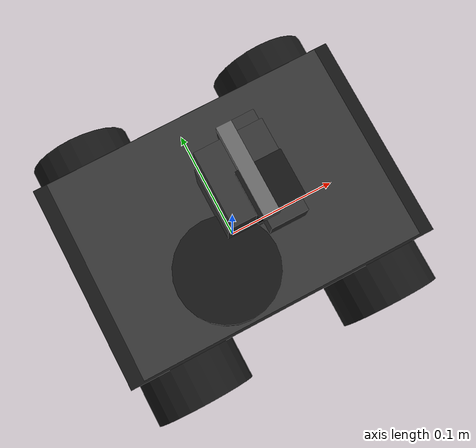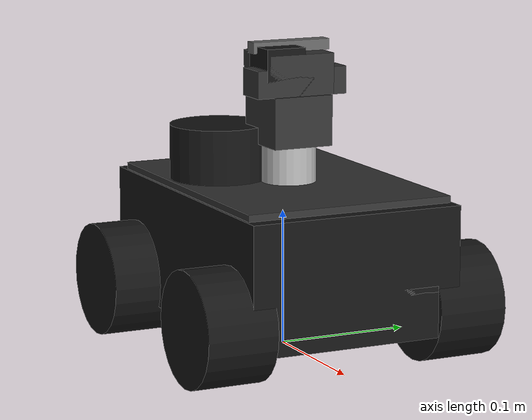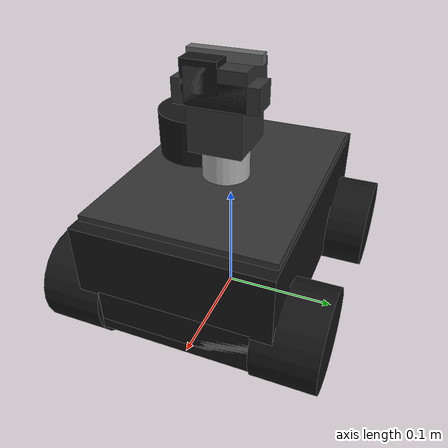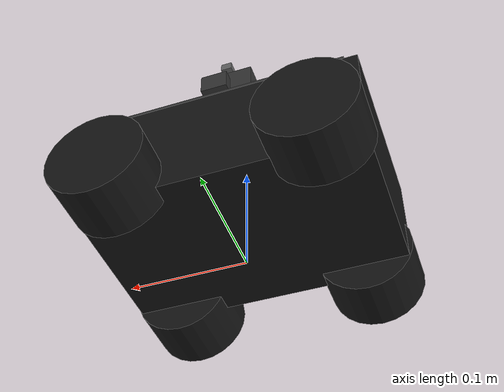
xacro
<?xml version="1.0"?>
<robot xmlns:xacro="http://www.ros.org/wiki/xacro" name="ugv_rover_pt">

  <!-- ================================================================
       0.  CONSTANTS
       ================================================================ -->
  <!-- pi is a built-in xacro constant; no need to redefine it -->

  <!-- ── Chassis  (top-view 243.18 × 159.96, front-view h 93.74) ── -->
  <xacro:property name="chassis_l"    value="0.24318"/>
  <xacro:property name="chassis_w"    value="0.15996"/>
  <xacro:property name="chassis_h"    value="0.09374"/>
  <xacro:property name="chassis_mass" value="3.500"/>   <!-- [EST] kg -->

  <!-- ── Ground geometry ─────────────────────────────────────────── -->
  <xacro:property name="ground_clearance" value="0.02513"/>  <!-- 25.13 mm -->
  <!-- Height of base_link (= chassis centroid) above ground -->
  <xacro:property name="chassis_cog_z"
                  value="${ground_clearance + chassis_h / 2.0}"/>

  <!-- ── Large corner wheels  (diameter 83.74 mm from front-view) ─ -->
  <xacro:property name="total_w"    value="0.23042"/>   <!-- 230.42 mm overall width  -->
  <xacro:property name="total_l"    value="0.25240"/>   <!-- 252.40 mm overall length -->
  <xacro:property name="wheel_r"    value="0.04187"/>   <!-- 83.74/2 mm               -->
  <xacro:property name="wheel_len"  value="0.05200"/>   <!-- [EST] 52 mm axial        -->
  <xacro:property name="wheel_mass" value="0.320"/>

  <!-- Wheel joint origin in base_link frame -->
  <xacro:property name="wheel_z_bl"
                  value="${wheel_r - chassis_cog_z}"/>
  <xacro:property name="wheel_x_bl"
                  value="${chassis_l/2.0 - (wheel_r - (total_l - chassis_l)/2.0)}"/>
  <xacro:property name="wheel_y_bl"
                  value="${total_w/2.0 - wheel_len/2.0}"/>
  <!-- Physical track width: 2 × wheel_y_bl = 2 × (0.23042/2 − 0.052/2) = 0.17842 m -->
  <xacro:property name="drive_wheel_separation" value="0.17842"/>

  <!-- ── Top deck plate ──────────────────────────────────────────── -->
  <xacro:property name="deck_l"     value="0.22000"/>   <!-- [EST] -->
  <xacro:property name="deck_w"     value="0.15622"/>   <!-- 156.22 mm inner plate  -->
  <xacro:property name="deck_h"     value="0.00500"/>   <!-- [EST] 5 mm             -->
  <xacro:property name="deck_mass"  value="0.200"/>

  <!-- ── Front stereo camera bar  (126.00 mm span, front-view) ──── -->
  <xacro:property name="fcam_l"     value="0.02500"/>   <!-- [EST] depth -->
  <xacro:property name="fcam_w"     value="0.12600"/>   <!-- 126.00 mm   -->
  <xacro:property name="fcam_h"     value="0.02800"/>   <!-- [EST]       -->
  <xacro:property name="fcam_mass"  value="0.060"/>

  <!-- ── Deck LiDAR ──────────────────────────────────────────────── -->
  <xacro:property name="lidar_r"    value="0.03600"/>   <!-- [EST] -->
  <xacro:property name="lidar_h"    value="0.04000"/>   <!-- [EST] -->
  <xacro:property name="lidar_mass" value="0.080"/>

  <!-- ── Arm lower column  (fixed section, 28.00 mm, side-view) ─── -->
  <xacro:property name="arm_col_r"  value="0.02000"/>   <!-- [EST] -->
  <xacro:property name="arm_col_h"  value="0.02800"/>   <!-- 28.00 mm -->
  <xacro:property name="arm_col_m"  value="0.080"/>

  <!-- ── Pan link  (revolute Z, 37.00 mm, side-view) ─────────────── -->
  <xacro:property name="pan_l"      value="0.05000"/>   <!-- [EST] -->
  <xacro:property name="pan_w"      value="0.04561"/>   <!-- 45.61 mm front-view -->
  <xacro:property name="pan_h"      value="0.03700"/>   <!-- 37.00 mm side-view  -->
  <xacro:property name="pan_mass"   value="0.080"/>

  <!-- ── Tilt / camera head  (revolute Y, part of 54 mm, side-view) -->
  <xacro:property name="tilt_l"     value="0.04561"/>   <!-- 45.61 mm  -->
  <xacro:property name="tilt_w"     value="0.05000"/>   <!-- [EST]     -->
  <xacro:property name="tilt_h"     value="0.03000"/>   <!-- [EST]     -->
  <xacro:property name="tilt_mass"  value="0.060"/>

  <!-- ── RGB camera module ────────────────────────────────────────── -->
  <xacro:property name="cam_l"      value="0.03000"/>   <!-- [EST] -->
  <xacro:property name="cam_w"      value="0.03000"/>   <!-- [EST] -->
  <xacro:property name="cam_h"      value="0.02500"/>   <!-- [EST] -->
  <xacro:property name="cam_mass"   value="0.030"/>

  <!-- ── Depth / IR sensor bar ────────────────────────────────────── -->
  <xacro:property name="depth_l"    value="0.02500"/>   <!-- [EST] -->
  <xacro:property name="depth_w"    value="0.07000"/>   <!-- [EST] -->
  <xacro:property name="depth_h"    value="0.02000"/>   <!-- [EST] -->
  <xacro:property name="depth_mass" value="0.040"/>

  <!-- ── Picatinny rail  (top of camera head) ─────────────────────── -->
  <xacro:property name="rail_l"     value="0.01000"/>   <!-- [EST] -->
  <xacro:property name="rail_w"     value="0.06000"/>   <!-- [EST] -->
  <xacro:property name="rail_h"     value="0.00800"/>   <!-- [EST] -->
  <xacro:property name="rail_mass"  value="0.015"/>

  <!-- ================================================================
       1.  MATERIALS
       ================================================================ -->
  <material name="matte_black"> <color rgba="0.08 0.08 0.08 1.0"/> </material>
  <material name="dark_grey">   <color rgba="0.20 0.20 0.20 1.0"/> </material>
  <material name="mid_grey">    <color rgba="0.40 0.40 0.40 1.0"/> </material>
  <material name="silver">      <color rgba="0.70 0.70 0.70 1.0"/> </material>

  <!-- ================================================================
       2.  INERTIA MACROS
       ================================================================ -->
  <xacro:macro name="box_inertia" params="m l w h">
    <inertial>
      <mass value="${m}"/>
      <inertia ixx="${m*(w*w+h*h)/12.0}" ixy="0" ixz="0"
               iyy="${m*(l*l+h*h)/12.0}" iyz="0"
               izz="${m*(l*l+w*w)/12.0}"/>
    </inertial>
  </xacro:macro>

  <xacro:macro name="cyl_inertia" params="m r h">
    <inertial>
      <mass value="${m}"/>
      <inertia ixx="${m*(3.0*r*r+h*h)/12.0}" ixy="0" ixz="0"
               iyy="${m*(3.0*r*r+h*h)/12.0}" iyz="0"
               izz="${m*r*r/2.0}"/>
    </inertial>
  </xacro:macro>

  <xacro:macro name="wheel_link" params="name r wlen mass">
    <link name="${name}">
      <visual>
        <geometry><cylinder radius="${r}" length="${wlen}"/></geometry>
        <material name="matte_black"/>
      </visual>
      <collision>
        <geometry><cylinder radius="${r}" length="${wlen}"/></geometry>
      </collision>
      <xacro:cyl_inertia m="${mass}" r="${r}" h="${wlen}"/>
    </link>
  </xacro:macro>

  <xacro:macro name="wheel_joint" params="name parent x y z">
    <joint name="${name}_joint" type="continuous">
      <parent link="${parent}"/>
      <child  link="${name}"/>
      <origin xyz="${x} ${y} ${z}" rpy="${pi/2} 0 0"/>
      <axis xyz="0 0 -1"/>
      <dynamics damping="0.10" friction="0.12"/>
    </joint>
  </xacro:macro>

  <!-- ================================================================
       4.  BASE FOOTPRINT  (ground-plane projection, z = 0)
       ================================================================ -->
  <link name="base_footprint"/>

  <joint name="base_footprint_joint" type="fixed">
    <parent link="base_footprint"/>
    <child  link="base_link"/>
    <!-- Raise base_link to the chassis centroid height above ground -->
    <origin xyz="0 0 ${chassis_cog_z}" rpy="0 0 0"/>
    <!--  chassis_cog_z = 0.02513 + 0.04687 = 0.07200 m  -->
  </joint>

  <!-- ================================================================
       5.  BASE LINK  (chassis centroid)
       ================================================================ -->
  <link name="base_link">
    <visual>
      <geometry>
        <box size="${chassis_l} ${chassis_w} ${chassis_h}"/>
      </geometry>
      <material name="matte_black"/>
    </visual>
    <collision>
      <geometry>
        <box size="${chassis_l} ${chassis_w} ${chassis_h}"/>
      </geometry>
    </collision>
    <xacro:box_inertia m="${chassis_mass}"
                       l="${chassis_l}" w="${chassis_w}" h="${chassis_h}"/>
  </link>

  <!-- ================================================================
       6.  CORNER WHEELS  (4 ×  continuous joints)
       ================================================================ -->
  <xacro:wheel_link name="front_left_wheel"
                    r="${wheel_r}" wlen="${wheel_len}" mass="${wheel_mass}"/>
  <xacro:wheel_joint name="front_left_wheel"  parent="base_link"
                     x="${ wheel_x_bl}"  y="${ wheel_y_bl}"  z="${wheel_z_bl}"/>

  <xacro:wheel_link name="front_right_wheel"
                    r="${wheel_r}" wlen="${wheel_len}" mass="${wheel_mass}"/>
  <xacro:wheel_joint name="front_right_wheel" parent="base_link"
                     x="${ wheel_x_bl}"  y="${-wheel_y_bl}" z="${wheel_z_bl}"/>

  <xacro:wheel_link name="rear_left_wheel"
                    r="${wheel_r}" wlen="${wheel_len}" mass="${wheel_mass}"/>
  <xacro:wheel_joint name="rear_left_wheel"   parent="base_link"
                     x="${-wheel_x_bl}"  y="${ wheel_y_bl}"  z="${wheel_z_bl}"/>

  <xacro:wheel_link name="rear_right_wheel"
                    r="${wheel_r}" wlen="${wheel_len}" mass="${wheel_mass}"/>
  <xacro:wheel_joint name="rear_right_wheel"  parent="base_link"
                     x="${-wheel_x_bl}"  y="${-wheel_y_bl}" z="${wheel_z_bl}"/>

  <!-- ================================================================
       8.  TOP DECK PLATE
       ================================================================ -->
  <link name="deck_plate">
    <visual>
      <geometry>
        <box size="${deck_l} ${deck_w} ${deck_h}"/>
      </geometry>
      <material name="dark_grey"/>
    </visual>
    <collision>
      <geometry>
        <box size="${deck_l} ${deck_w} ${deck_h}"/>
      </geometry>
    </collision>
    <xacro:box_inertia m="${deck_mass}"
                       l="${deck_l}" w="${deck_w}" h="${deck_h}"/>
  </link>

  <!-- Bottom of deck rests on chassis top -->
  <joint name="deck_plate_joint" type="fixed">
    <parent link="base_link"/>
    <child  link="deck_plate"/>
    <origin xyz="0 0 ${chassis_h/2.0 + deck_h/2.0}" rpy="0 0 0"/>
  </joint>

  <link name="front_camera_link">
    <visual>
      <geometry>
        <box size="${fcam_l} ${fcam_w} ${fcam_h}"/>
      </geometry>
      <material name="matte_black"/>
    </visual>
    <collision>
      <geometry>
        <box size="${fcam_l} ${fcam_w} ${fcam_h}"/>
      </geometry>
    </collision>
    <xacro:box_inertia m="${fcam_mass}"
                       l="${fcam_l}" w="${fcam_w}" h="${fcam_h}"/>
  </link>

  <!-- Front face of chassis, vertically centred on lower half -->
  <joint name="front_camera_joint" type="fixed">
    <parent link="base_link"/>
    <child  link="front_camera_link"/>
    <origin xyz="${chassis_l/2.0 - fcam_l/2.0}
                  0
                  ${-chassis_h/4.0}"
            rpy="0 0 0"/>
  </joint>

  <!-- Optical frame (Z forward, X right, Y down) -->
  <link name="front_camera_optical_frame"/>
  <joint name="front_camera_optical_joint" type="fixed">
    <parent link="front_camera_link"/>
    <child  link="front_camera_optical_frame"/>
    <origin xyz="0 0 0" rpy="${-pi/2} 0 ${-pi/2}"/>
  </joint>

  <!-- ================================================================
       10.  DECK LiDAR
       ================================================================ -->
  <link name="lidar_link">
    <visual>
      <geometry>
        <cylinder radius="${lidar_r}" length="${lidar_h}"/>
      </geometry>
      <material name="matte_black"/>
    </visual>
    <collision>
      <geometry>
        <cylinder radius="${lidar_r}" length="${lidar_h}"/>
      </geometry>
    </collision>
    <xacro:cyl_inertia m="${lidar_mass}" r="${lidar_r}" h="${lidar_h}"/>
  </link>

  <!-- Positioned slightly to the rear-right on the deck plate -->
  <joint name="lidar_joint" type="fixed">
    <parent link="deck_plate"/>
    <child  link="lidar_link"/>
    <origin xyz="-0.025 -0.040 ${deck_h/2.0 + lidar_h/2.0}" rpy="0 0 0"/>
  </joint>

  <!-- Laser scan frame: ROS REP-103, X forward, Y left, Z up. -->
  <link name="laser_link"/>
  <joint name="laser_link_joint" type="fixed">
    <parent link="lidar_link"/>
    <child  link="laser_link"/>
    <origin xyz="0 0 0" rpy="0 0 0"/>
  </joint>

  <link name="arm_column">
    <visual>
      <geometry>
        <cylinder radius="${arm_col_r}" length="${arm_col_h}"/>
      </geometry>
      <material name="silver"/>
    </visual>
    <collision>
      <geometry>
        <cylinder radius="${arm_col_r}" length="${arm_col_h}"/>
      </geometry>
    </collision>
    <xacro:cyl_inertia m="${arm_col_m}" r="${arm_col_r}" h="${arm_col_h}"/>
  </link>

  <!-- Mounted at deck centre, slightly forward -->
  <joint name="arm_column_joint" type="fixed">
    <parent link="deck_plate"/>
    <child  link="arm_column"/>
    <origin xyz="0.010 0 ${deck_h/2.0 + arm_col_h/2.0}" rpy="0 0 0"/>
  </joint>

  <link name="pan_link">
    <visual>
      <geometry>
        <box size="${pan_l} ${pan_w} ${pan_h}"/>
      </geometry>
      <material name="dark_grey"/>
    </visual>
    <collision>
      <geometry>
        <box size="${pan_l} ${pan_w} ${pan_h}"/>
      </geometry>
    </collision>
    <xacro:box_inertia m="${pan_mass}"
                       l="${pan_l}" w="${pan_w}" h="${pan_h}"/>
  </link>

  <joint name="pan_joint" type="revolute">
    <parent link="arm_column"/>
    <child  link="pan_link"/>
    <origin xyz="0 0 ${arm_col_h/2.0 + pan_h/2.0}" rpy="0 0 0"/>
    <axis xyz="0 0 1"/>
    <limit lower="${-pi/2}" upper="${pi/2}" effort="2.0" velocity="1.5"/>
    <dynamics damping="0.08" friction="0.05"/>
  </joint>

  <link name="tilt_link">
    <visual>
      <geometry>
        <box size="${tilt_l} ${tilt_w} ${tilt_h}"/>
      </geometry>
      <material name="dark_grey"/>
    </visual>
    <collision>
      <geometry>
        <box size="${tilt_l} ${tilt_w} ${tilt_h}"/>
      </geometry>
    </collision>
    <xacro:box_inertia m="${tilt_mass}"
                       l="${tilt_l}" w="${tilt_w}" h="${tilt_h}"/>
  </link>

  <joint name="tilt_joint" type="revolute">
    <parent link="pan_link"/>
    <child  link="tilt_link"/>
    <origin xyz="0 0 ${pan_h/2.0 + tilt_h/2.0}" rpy="0 0 0"/>
    <axis xyz="0 1 0"/>
    <!-- negative = tilting up, positive = tilting down -->
    <limit lower="${-pi/6}" upper="${pi/3}" effort="2.0" velocity="1.5"/>
    <dynamics damping="0.08" friction="0.05"/>
  </joint>

  <!-- ================================================================
       14.  RGB CAMERA MODULE  (on forward face of tilt head)
       ================================================================ -->
  <link name="camera_link">
    <visual>
      <geometry>
        <box size="${cam_l} ${cam_w} ${cam_h}"/>
      </geometry>
      <material name="matte_black"/>
    </visual>
    <collision>
      <geometry>
        <box size="${cam_l} ${cam_w} ${cam_h}"/>
      </geometry>
    </collision>
    <xacro:box_inertia m="${cam_mass}"
                       l="${cam_l}" w="${cam_w}" h="${cam_h}"/>
  </link>

  <joint name="camera_joint" type="fixed">
    <parent link="tilt_link"/>
    <child  link="camera_link"/>
    <!-- forward-left of tilt head, upper half -->
    <origin xyz="${tilt_l/2.0 - cam_l/2.0}
                  ${-tilt_w/4.0}
                  ${tilt_h/4.0}"
            rpy="0 0 0"/>
  </joint>

  <!-- Optical frame -->
  <link name="camera_optical_frame"/>
  <joint name="camera_optical_joint" type="fixed">
    <parent link="camera_link"/>
    <child  link="camera_optical_frame"/>
    <origin xyz="0 0 0" rpy="${-pi/2} 0 ${-pi/2}"/>
  </joint>

  <link name="depth_sensor_link">
    <visual>
      <geometry>
        <box size="${depth_l} ${depth_w} ${depth_h}"/>
      </geometry>
      <material name="dark_grey"/>
    </visual>
    <collision>
      <geometry>
        <box size="${depth_l} ${depth_w} ${depth_h}"/>
      </geometry>
    </collision>
    <xacro:box_inertia m="${depth_mass}"
                       l="${depth_l}" w="${depth_w}" h="${depth_h}"/>
  </link>

  <joint name="depth_sensor_joint" type="fixed">
    <parent link="tilt_link"/>
    <child  link="depth_sensor_link"/>
    <origin xyz="${tilt_l/2.0 - depth_l/2.0}
                  0
                  ${-(tilt_h/2.0 - depth_h/2.0)}"
            rpy="0 0 0"/>
  </joint>

  <!-- Depth optical frame -->
  <link name="depth_optical_frame"/>
  <joint name="depth_optical_joint" type="fixed">
    <parent link="depth_sensor_link"/>
    <child  link="depth_optical_frame"/>
    <origin xyz="0 0 0" rpy="${-pi/2} 0 ${-pi/2}"/>
  </joint>

  <link name="rail_link">
    <visual>
      <geometry>
        <box size="${rail_l} ${rail_w} ${rail_h}"/>
      </geometry>
      <material name="mid_grey"/>
    </visual>
    <collision>
      <geometry>
        <box size="${rail_l} ${rail_w} ${rail_h}"/>
      </geometry>
    </collision>
    <xacro:box_inertia m="${rail_mass}"
                       l="${rail_l}" w="${rail_w}" h="${rail_h}"/>
  </link>

  <joint name="rail_joint" type="fixed">
    <parent link="tilt_link"/>
    <child  link="rail_link"/>
    <origin xyz="0 0 ${tilt_h/2.0 + rail_h/2.0}" rpy="0 0 0"/>
  </joint>

  <!-- ================================================================
       17.  IMU  (virtual sensor frame at chassis centroid)
       ================================================================ -->
  <link name="imu_link"/>
  <joint name="imu_joint" type="fixed">
    <parent link="base_link"/>
    <child  link="imu_link"/>
    <origin xyz="0 0 0" rpy="0 0 0"/>
  </joint>

  <!-- ================================================================
       18.  GAZEBO SIM PLUGINS  (Gazebo Harmonic / Garden)
       ================================================================ -->

  <!-- ── Wheel surface friction ────────────────────────────────────── -->
  <xacro:macro name="wheel_gazebo" params="name">
    <gazebo reference="${name}">
      <mu1>1.0</mu1>
      <mu2>0.3</mu2>
      <fdir1>1 0 0</fdir1>
      <kp>200000.0</kp>
      <kd>80.0</kd>
      <minDepth>0.002</minDepth>
      <maxVel>0.2</maxVel>
    </gazebo>
  </xacro:macro>

  <xacro:wheel_gazebo name="front_left_wheel"/>
  <xacro:wheel_gazebo name="front_right_wheel"/>
  <xacro:wheel_gazebo name="rear_left_wheel"/>
  <xacro:wheel_gazebo name="rear_right_wheel"/>

  <!-- ── Skid-steer drive (front + rear driven pairs) ──────────────── -->
  <gazebo>
    <plugin filename="gz-sim-diff-drive-system"
            name="gz::sim::systems::DiffDrive">
      <left_joint>front_left_wheel_joint</left_joint>
      <right_joint>front_right_wheel_joint</right_joint>
      <left_joint>rear_left_wheel_joint</left_joint>
      <right_joint>rear_right_wheel_joint</right_joint>
      <wheel_separation>${drive_wheel_separation}</wheel_separation>
      <wheel_radius>${wheel_r}</wheel_radius>
      <max_wheel_torque>10.0</max_wheel_torque>
      <topic>/cmd_vel</topic>
      <odom_topic>/odom</odom_topic>
      <!-- EKF (robot_localization) owns odom→base_footprint TF; redirect gz TF so it does not conflict -->
      <tf_topic>/gz/tf_unused</tf_topic>
      <frame_id>odom</frame_id>
      <child_frame_id>base_footprint</child_frame_id>
      <odom_publish_frequency>50</odom_publish_frequency>
    </plugin>
  </gazebo>

  <!-- ── Joint state publisher ─────────────────────────────────────── -->
  <gazebo>
    <plugin filename="gz-sim-joint-state-publisher-system"
            name="gz::sim::systems::JointStatePublisher">
      <topic>/joint_states</topic>
      <update_rate>50</update_rate>
      <joint_name>pan_joint</joint_name>
      <joint_name>tilt_joint</joint_name>
      <joint_name>front_left_wheel_joint</joint_name>
      <joint_name>front_right_wheel_joint</joint_name>
      <joint_name>rear_left_wheel_joint</joint_name>
      <joint_name>rear_right_wheel_joint</joint_name>
    </plugin>
  </gazebo>

  <!-- ── Deck LiDAR (2-D laser scan) ───────────────────────────────── -->
  <gazebo reference="laser_link">
    <sensor name="lidar_sensor" type="gpu_lidar">
      <topic>scan</topic>
      <update_rate>20</update_rate>
      <gz_frame_id>laser_link</gz_frame_id>
      <lidar>
        <scan>
          <horizontal>
            <samples>360</samples>
            <resolution>1</resolution>
            <min_angle>-3.14159265</min_angle>
            <max_angle> 3.14159265</max_angle>
          </horizontal>
        </scan>
        <range>
          <min>0.12</min>
          <max>8.0</max>
          <resolution>0.01</resolution>
        </range>
        <noise>
          <type>gaussian</type>
          <mean>0.0</mean>
          <stddev>0.01</stddev>
        </noise>
      </lidar>
      <always_on>true</always_on>
      <visualize>false</visualize>
    </sensor>
  </gazebo>

  <!-- ── RGB camera (pan-tilt head) ────────────────────────────────── -->
  <gazebo reference="camera_link">
    <sensor name="rgb_camera" type="camera">
      <topic>camera</topic>
      <update_rate>30</update_rate>
      <gz_frame_id>camera_optical_frame</gz_frame_id>
      <camera>
        <horizontal_fov>1.3962634</horizontal_fov>
        <image>
          <width>640</width>
          <height>480</height>
          <format>R8G8B8</format>
        </image>
        <clip>
          <near>0.02</near>
          <far>100.0</far>
        </clip>
        <noise>
          <type>gaussian</type>
          <mean>0.0</mean>
          <stddev>0.007</stddev>
        </noise>
      </camera>
      <always_on>true</always_on>
      <visualize>false</visualize>
    </sensor>
  </gazebo>

  <!-- ── Depth / IR sensor ─────────────────────────────────────────── -->
  <gazebo reference="depth_sensor_link">
    <sensor name="depth_sensor" type="depth_camera">
      <topic>depth_camera</topic>
      <update_rate>30</update_rate>
      <gz_frame_id>depth_optical_frame</gz_frame_id>
      <camera>
        <horizontal_fov>1.0471975512</horizontal_fov>
        <image>
          <width>640</width>
          <height>480</height>
        </image>
        <clip>
          <near>0.05</near>
          <far>10.0</far>
        </clip>
      </camera>
      <always_on>true</always_on>
      <visualize>false</visualize>
    </sensor>
  </gazebo>

  <!-- ── Front stereo camera bar ───────────────────────────────────── -->
  <gazebo reference="front_camera_link">
    <sensor name="front_camera" type="camera">
      <topic>front_camera</topic>
      <update_rate>30</update_rate>
      <gz_frame_id>front_camera_optical_frame</gz_frame_id>
      <camera>
        <horizontal_fov>1.5707963</horizontal_fov>
        <image>
          <width>1280</width>
          <height>720</height>
          <format>R8G8B8</format>
        </image>
        <clip>
          <near>0.05</near>
          <far>200.0</far>
        </clip>
      </camera>
      <always_on>true</always_on>
      <visualize>false</visualize>
    </sensor>
  </gazebo>

  <!-- ── IMU ───────────────────────────────────────────────────────── -->
  <gazebo reference="imu_link">
    <sensor name="imu_sensor" type="imu">
      <topic>imu/data</topic>
      <update_rate>100</update_rate>
      <gz_frame_id>imu_link</gz_frame_id>
      <always_on>true</always_on>
      <imu>
        <angular_velocity>
          <x><noise type="gaussian"><mean>0.0</mean><stddev>2e-4</stddev></noise></x>
          <y><noise type="gaussian"><mean>0.0</mean><stddev>2e-4</stddev></noise></y>
          <z><noise type="gaussian"><mean>0.0</mean><stddev>2e-4</stddev></noise></z>
        </angular_velocity>
        <linear_acceleration>
          <x><noise type="gaussian"><mean>0.0</mean><stddev>1.7e-2</stddev></noise></x>
          <y><noise type="gaussian"><mean>0.0</mean><stddev>1.7e-2</stddev></noise></y>
          <z><noise type="gaussian"><mean>0.0</mean><stddev>1.7e-2</stddev></noise></z>
        </linear_acceleration>
      </imu>
    </sensor>
  </gazebo>

</robot>
